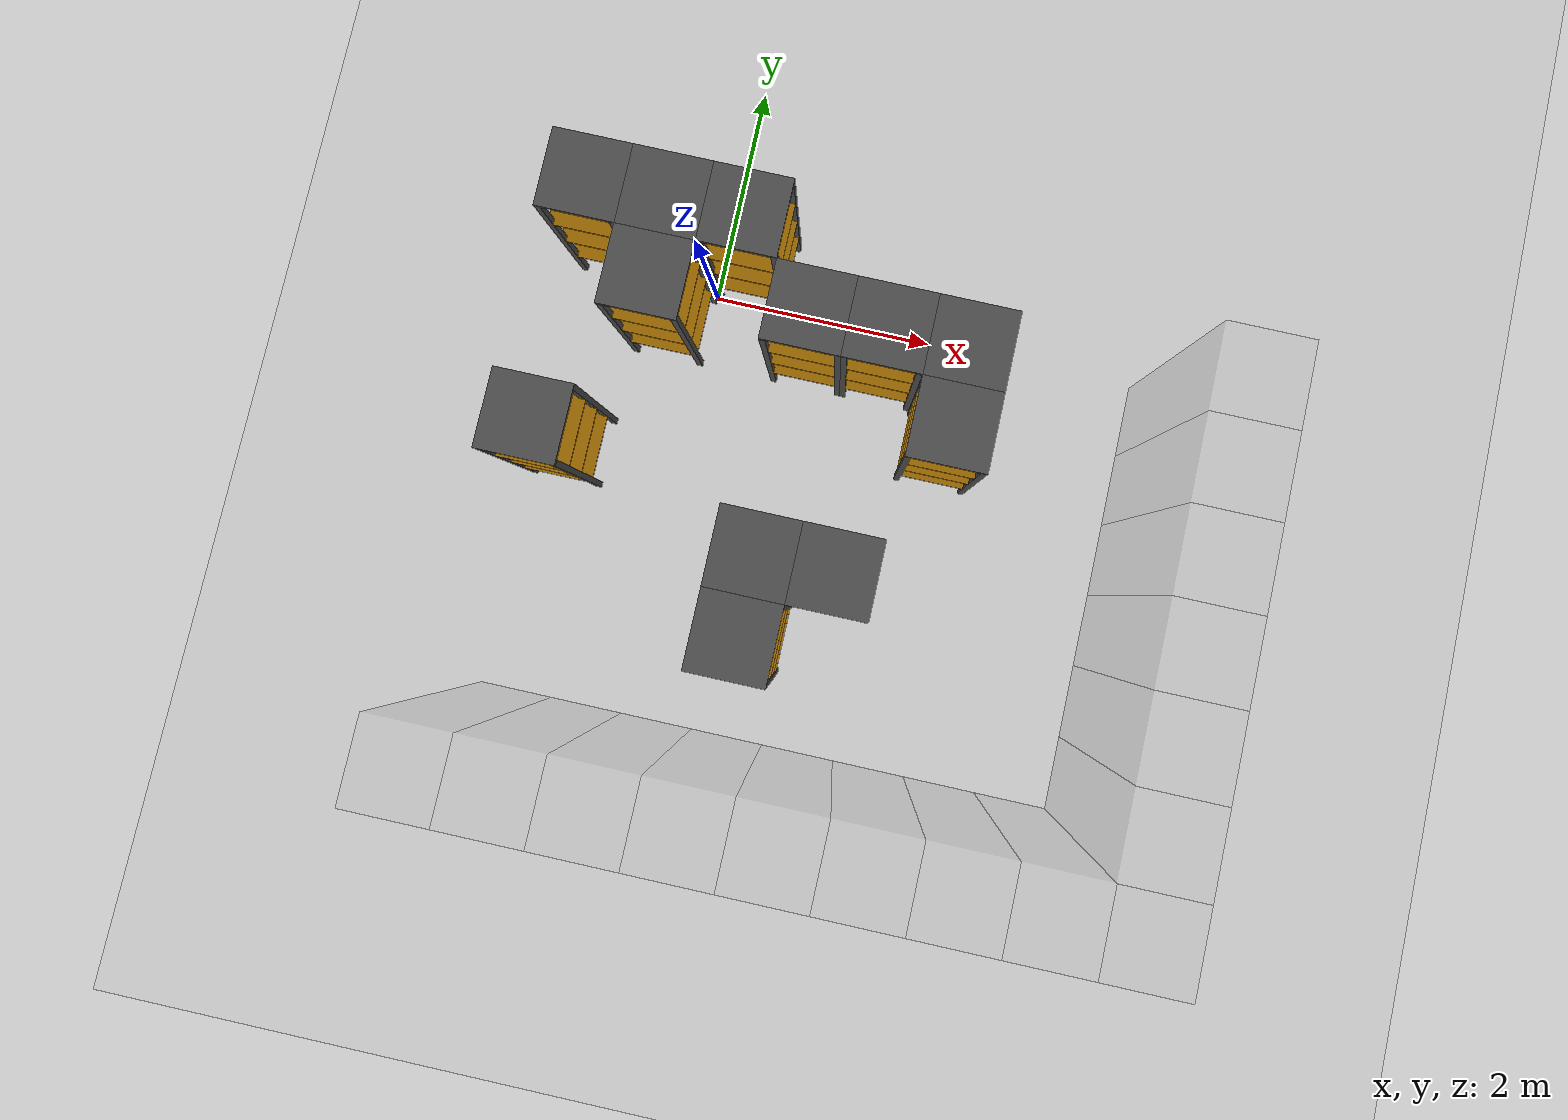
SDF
<sdf version="1.6">
 <world name="default">
  <model name="ground_plane">
   <static>1</static>
   <link name="link">
    <collision name="collision">
     <geometry><plane><normal>0 0 1</normal><size>100 100</size></plane></geometry>
     <surface><friction><ode><mu>100</mu><mu2>50</mu2></ode></friction></surface>
    </collision>
    <visual name="visual">
     <cast_shadows>0</cast_shadows>
     <geometry><plane><normal>0 0 1</normal><size>100 100</size></plane></geometry>
     <material>
      <script><uri>file://media/materials/scripts/gazebo.material</uri><name>Gazebo/Grey</name></script>
     </material>
    </visual>
   </link>
  </model>
  <model name="pole_0_5">
   <static>1</static>
   <link name="main_block">
    <pose>0 0 1.5 0 -0 0</pose>
    <collision name="collision"><geometry><box><size>0.65 0.65 3</size></box></geometry></collision>
    <visual name="visual">
     <geometry><box><size>0.65 0.65 3</size></box></geometry>
     <material><ambient>0.5 0.5 0.5 0.25</ambient><diffuse>0.75 0.75 0.75 0.25</diffuse></material>
    </visual>
   </link>
   <pose>-0.975 -4.225 0 0 -0 0</pose>
  </model>
  <model name="pole_0_6">
   <static>1</static>
   <link name="main_block">
    <pose>0 0 1.5 0 -0 0</pose>
    <collision name="collision"><geometry><box><size>0.65 0.65 3</size></box></geometry></collision>
    <visual name="visual">
     <geometry><box><size>0.65 0.65 3</size></box></geometry>
     <material><ambient>0.5 0.5 0.5 0.25</ambient><diffuse>0.75 0.75 0.75 0.25</diffuse></material>
    </visual>
   </link>
   <pose>-0.325 -4.225 0 0 -0 0</pose>
  </model>
  <model name="pole_0_7">
   <static>1</static>
   <link name="main_block">
    <pose>0 0 1.5 0 -0 0</pose>
    <collision name="collision"><geometry><box><size>0.65 0.65 3</size></box></geometry></collision>
    <visual name="visual">
     <geometry><box><size>0.65 0.65 3</size></box></geometry>
     <material><ambient>0.5 0.5 0.5 0.25</ambient><diffuse>0.75 0.75 0.75 0.25</diffuse></material>
    </visual>
   </link>
   <pose>0.325 -4.225 0 0 -0 0</pose>
  </model>
  <model name="pole_0_8">
   <static>1</static>
   <link name="main_block">
    <pose>0 0 1.5 0 -0 0</pose>
    <collision name="collision"><geometry><box><size>0.65 0.65 3</size></box></geometry></collision>
    <visual name="visual">
     <geometry><box><size>0.65 0.65 3</size></box></geometry>
     <material><ambient>0.5 0.5 0.5 0.25</ambient><diffuse>0.75 0.75 0.75 0.25</diffuse></material>
    </visual>
   </link>
   <pose>0.975 -4.225 0 0 -0 0</pose>
  </model>
  <model name="pole_0_9">
   <static>1</static>
   <link name="main_block">
    <pose>0 0 1.5 0 -0 0</pose>
    <collision name="collision"><geometry><box><size>0.65 0.65 3</size></box></geometry></collision>
    <visual name="visual">
     <geometry><box><size>0.65 0.65 3</size></box></geometry>
     <material><ambient>0.5 0.5 0.5 0.25</ambient><diffuse>0.75 0.75 0.75 0.25</diffuse></material>
    </visual>
   </link>
   <pose>1.625 -4.225 0 0 -0 0</pose>
  </model>
  <model name="pole_0_10">
   <static>1</static>
   <link name="main_block">
    <pose>0 0 1.5 0 -0 0</pose>
    <collision name="collision"><geometry><box><size>0.65 0.65 3</size></box></geometry></collision>
    <visual name="visual">
     <geometry><box><size>0.65 0.65 3</size></box></geometry>
     <material><ambient>0.5 0.5 0.5 0.25</ambient><diffuse>0.75 0.75 0.75 0.25</diffuse></material>
    </visual>
   </link>
   <pose>2.275 -4.225 0 0 -0 0</pose>
  </model>
  <model name="pole_0_11">
   <static>1</static>
   <link name="main_block">
    <pose>0 0 1.5 0 -0 0</pose>
    <collision name="collision"><geometry><box><size>0.65 0.65 3</size></box></geometry></collision>
    <visual name="visual">
     <geometry><box><size>0.65 0.65 3</size></box></geometry>
     <material><ambient>0.5 0.5 0.5 0.25</ambient><diffuse>0.75 0.75 0.75 0.25</diffuse></material>
    </visual>
   </link>
   <pose>2.925 -4.225 0 0 -0 0</pose>
  </model>
  <model name="pole_0_12">
   <static>1</static>
   <link name="main_block">
    <pose>0 0 1.5 0 -0 0</pose>
    <collision name="collision"><geometry><box><size>0.65 0.65 3</size></box></geometry></collision>
    <visual name="visual">
     <geometry><box><size>0.65 0.65 3</size></box></geometry>
     <material><ambient>0.5 0.5 0.5 0.25</ambient><diffuse>0.75 0.75 0.75 0.25</diffuse></material>
    </visual>
   </link>
   <pose>3.575 -4.225 0 0 -0 0</pose>
  </model>
  <model name="pole_0_13">
   <static>1</static>
   <link name="main_block">
    <pose>0 0 1.5 0 -0 0</pose>
    <collision name="collision"><geometry><box><size>0.65 0.65 3</size></box></geometry></collision>
    <visual name="visual">
     <geometry><box><size>0.65 0.65 3</size></box></geometry>
     <material><ambient>0.5 0.5 0.5 0.25</ambient><diffuse>0.75 0.75 0.75 0.25</diffuse></material>
    </visual>
   </link>
   <pose>4.225 -4.225 0 0 -0 0</pose>
  </model>
  <model name="pole_1_13">
   <static>1</static>
   <link name="main_block">
    <pose>0 0 1.5 0 -0 0</pose>
    <collision name="collision"><geometry><box><size>0.65 0.65 3</size></box></geometry></collision>
    <visual name="visual">
     <geometry><box><size>0.65 0.65 3</size></box></geometry>
     <material><ambient>0.5 0.5 0.5 0.25</ambient><diffuse>0.75 0.75 0.75 0.25</diffuse></material>
    </visual>
   </link>
   <pose>4.225 -3.575 0 0 -0 0</pose>
  </model>
  <model name="warehouse_shelf_2_8">
   <static>1</static>
   <link name="main_block">
    <pose>0 0 1.25 0 -0 0</pose>
    <collision name="collision"><geometry><box><size>0.65 0.65 1.5</size></box></geometry></collision>
   </link>
   <link name="leg_1">
    <pose>0.3 0.3 1 0 -0 0</pose>
    <collision name="collision"><geometry><box><size>0.05 0.05 2</size></box></geometry></collision>
    <visual name="visual">
     <geometry><box><size>0.05 0.05 2</size></box></geometry>
     <material><ambient>0.2 0.2 0.2 1</ambient><diffuse>0.3 0.3 0.3 1</diffuse></material>
    </visual>
   </link>
   <link name="leg_2">
    <pose>-0.3 0.3 1 0 -0 0</pose>
    <collision name="collision"><geometry><box><size>0.05 0.05 2</size></box></geometry></collision>
    <visual name="visual">
     <geometry><box><size>0.05 0.05 2</size></box></geometry>
     <material><ambient>0.2 0.2 0.2 1</ambient><diffuse>0.3 0.3 0.3 1</diffuse></material>
    </visual>
   </link>
   <link name="leg_3">
    <pose>-0.3 -0.3 1 0 -0 0</pose>
    <collision name="collision"><geometry><box><size>0.05 0.05 2</size></box></geometry></collision>
    <visual name="visual">
     <geometry><box><size>0.05 0.05 2</size></box></geometry>
     <material><ambient>0.2 0.2 0.2 1</ambient><diffuse>0.3 0.3 0.3 1</diffuse></material>
    </visual>
   </link>
   <link name="leg_4">
    <pose>0.3 -0.3 1 0 -0 0</pose>
    <collision name="collision"><geometry><box><size>0.05 0.05 2</size></box></geometry></collision>
    <visual name="visual">
     <geometry><box><size>0.05 0.05 2</size></box></geometry>
     <material><ambient>0.2 0.2 0.2 1</ambient><diffuse>0.3 0.3 0.3 1</diffuse></material>
    </visual>
   </link>
   <link name="shelf_0">
    <pose>0 0 0.49 0 -0 0</pose>
    <visual name="visual">
     <geometry><box><size>0.649 0.649 0.02</size></box></geometry>
     <material><ambient>0.2 0.05 0 1</ambient><diffuse>0.6 0.4 0 1</diffuse></material>
    </visual>
   </link>
   <link name="shelf_1">
    <pose>0 0 0.99 0 -0 0</pose>
    <visual name="visual">
     <geometry><box><size>0.649 0.649 0.02</size></box></geometry>
     <material><ambient>0.2 0.05 0 1</ambient><diffuse>0.6 0.4 0 1</diffuse></material>
    </visual>
   </link>
   <link name="shelf_2">
    <pose>0 0 1.49 0 -0 0</pose>
    <visual name="visual">
     <geometry><box><size>0.649 0.649 0.02</size></box></geometry>
     <material><ambient>0.2 0.05 0 1</ambient><diffuse>0.6 0.4 0 1</diffuse></material>
    </visual>
   </link>
   <link name="shelf_top">
    <pose>0 0 1.99 0 -0 0</pose>
    <visual name="visual">
     <geometry><box><size>0.65 0.65 0.04</size></box></geometry>
     <material><ambient>0.2 0.2 0.2 1</ambient><diffuse>0.3 0.3 0.3 1</diffuse></material>
    </visual>
   </link>
   <pose>0.975 -2.925 0 0 -0 0</pose>
  </model>
  <model name="pole_2_13">
   <static>1</static>
   <link name="main_block">
    <pose>0 0 1.5 0 -0 0</pose>
    <collision name="collision"><geometry><box><size>0.65 0.65 3</size></box></geometry></collision>
    <visual name="visual">
     <geometry><box><size>0.65 0.65 3</size></box></geometry>
     <material><ambient>0.5 0.5 0.5 0.25</ambient><diffuse>0.75 0.75 0.75 0.25</diffuse></material>
    </visual>
   </link>
   <pose>4.225 -2.925 0 0 -0 0</pose>
  </model>
  <model name="warehouse_shelf_3_8">
   <static>1</static>
   <link name="main_block">
    <pose>0 0 1.25 0 -0 0</pose>
    <collision name="collision"><geometry><box><size>0.65 0.65 1.5</size></box></geometry></collision>
   </link>
   <link name="leg_1">
    <pose>0.3 0.3 1 0 -0 0</pose>
    <collision name="collision"><geometry><box><size>0.05 0.05 2</size></box></geometry></collision>
    <visual name="visual">
     <geometry><box><size>0.05 0.05 2</size></box></geometry>
     <material><ambient>0.2 0.2 0.2 1</ambient><diffuse>0.3 0.3 0.3 1</diffuse></material>
    </visual>
   </link>
   <link name="leg_2">
    <pose>-0.3 0.3 1 0 -0 0</pose>
    <collision name="collision"><geometry><box><size>0.05 0.05 2</size></box></geometry></collision>
    <visual name="visual">
     <geometry><box><size>0.05 0.05 2</size></box></geometry>
     <material><ambient>0.2 0.2 0.2 1</ambient><diffuse>0.3 0.3 0.3 1</diffuse></material>
    </visual>
   </link>
   <link name="leg_3">
    <pose>-0.3 -0.3 1 0 -0 0</pose>
    <collision name="collision"><geometry><box><size>0.05 0.05 2</size></box></geometry></collision>
    <visual name="visual">
     <geometry><box><size>0.05 0.05 2</size></box></geometry>
     <material><ambient>0.2 0.2 0.2 1</ambient><diffuse>0.3 0.3 0.3 1</diffuse></material>
    </visual>
   </link>
   <link name="leg_4">
    <pose>0.3 -0.3 1 0 -0 0</pose>
    <collision name="collision"><geometry><box><size>0.05 0.05 2</size></box></geometry></collision>
    <visual name="visual">
     <geometry><box><size>0.05 0.05 2</size></box></geometry>
     <material><ambient>0.2 0.2 0.2 1</ambient><diffuse>0.3 0.3 0.3 1</diffuse></material>
    </visual>
   </link>
   <link name="shelf_0">
    <pose>0 0 0.49 0 -0 0</pose>
    <visual name="visual">
     <geometry><box><size>0.649 0.649 0.02</size></box></geometry>
     <material><ambient>0.2 0.05 0 1</ambient><diffuse>0.6 0.4 0 1</diffuse></material>
    </visual>
   </link>
   <link name="shelf_1">
    <pose>0 0 0.99 0 -0 0</pose>
    <visual name="visual">
     <geometry><box><size>0.649 0.649 0.02</size></box></geometry>
     <material><ambient>0.2 0.05 0 1</ambient><diffuse>0.6 0.4 0 1</diffuse></material>
    </visual>
   </link>
   <link name="shelf_2">
    <pose>0 0 1.49 0 -0 0</pose>
    <visual name="visual">
     <geometry><box><size>0.649 0.649 0.02</size></box></geometry>
     <material><ambient>0.2 0.05 0 1</ambient><diffuse>0.6 0.4 0 1</diffuse></material>
    </visual>
   </link>
   <link name="shelf_top">
    <pose>0 0 1.99 0 -0 0</pose>
    <visual name="visual">
     <geometry><box><size>0.65 0.65 0.04</size></box></geometry>
     <material><ambient>0.2 0.2 0.2 1</ambient><diffuse>0.3 0.3 0.3 1</diffuse></material>
    </visual>
   </link>
   <pose>0.975 -2.275 0 0 -0 0</pose>
  </model>
  <model name="warehouse_shelf_3_9">
   <static>1</static>
   <link name="main_block">
    <pose>0 0 1.25 0 -0 0</pose>
    <collision name="collision"><geometry><box><size>0.65 0.65 1.5</size></box></geometry></collision>
   </link>
   <link name="leg_1">
    <pose>0.3 0.3 1 0 -0 0</pose>
    <collision name="collision"><geometry><box><size>0.05 0.05 2</size></box></geometry></collision>
    <visual name="visual">
     <geometry><box><size>0.05 0.05 2</size></box></geometry>
     <material><ambient>0.2 0.2 0.2 1</ambient><diffuse>0.3 0.3 0.3 1</diffuse></material>
    </visual>
   </link>
   <link name="leg_2">
    <pose>-0.3 0.3 1 0 -0 0</pose>
    <collision name="collision"><geometry><box><size>0.05 0.05 2</size></box></geometry></collision>
    <visual name="visual">
     <geometry><box><size>0.05 0.05 2</size></box></geometry>
     <material><ambient>0.2 0.2 0.2 1</ambient><diffuse>0.3 0.3 0.3 1</diffuse></material>
    </visual>
   </link>
   <link name="leg_3">
    <pose>-0.3 -0.3 1 0 -0 0</pose>
    <collision name="collision"><geometry><box><size>0.05 0.05 2</size></box></geometry></collision>
    <visual name="visual">
     <geometry><box><size>0.05 0.05 2</size></box></geometry>
     <material><ambient>0.2 0.2 0.2 1</ambient><diffuse>0.3 0.3 0.3 1</diffuse></material>
    </visual>
   </link>
   <link name="leg_4">
    <pose>0.3 -0.3 1 0 -0 0</pose>
    <collision name="collision"><geometry><box><size>0.05 0.05 2</size></box></geometry></collision>
    <visual name="visual">
     <geometry><box><size>0.05 0.05 2</size></box></geometry>
     <material><ambient>0.2 0.2 0.2 1</ambient><diffuse>0.3 0.3 0.3 1</diffuse></material>
    </visual>
   </link>
   <link name="shelf_0">
    <pose>0 0 0.49 0 -0 0</pose>
    <visual name="visual">
     <geometry><box><size>0.649 0.649 0.02</size></box></geometry>
     <material><ambient>0.2 0.05 0 1</ambient><diffuse>0.6 0.4 0 1</diffuse></material>
    </visual>
   </link>
   <link name="shelf_1">
    <pose>0 0 0.99 0 -0 0</pose>
    <visual name="visual">
     <geometry><box><size>0.649 0.649 0.02</size></box></geometry>
     <material><ambient>0.2 0.05 0 1</ambient><diffuse>0.6 0.4 0 1</diffuse></material>
    </visual>
   </link>
   <link name="shelf_2">
    <pose>0 0 1.49 0 -0 0</pose>
    <visual name="visual">
     <geometry><box><size>0.649 0.649 0.02</size></box></geometry>
     <material><ambient>0.2 0.05 0 1</ambient><diffuse>0.6 0.4 0 1</diffuse></material>
    </visual>
   </link>
   <link name="shelf_top">
    <pose>0 0 1.99 0 -0 0</pose>
    <visual name="visual">
     <geometry><box><size>0.65 0.65 0.04</size></box></geometry>
     <material><ambient>0.2 0.2 0.2 1</ambient><diffuse>0.3 0.3 0.3 1</diffuse></material>
    </visual>
   </link>
   <pose>1.625 -2.275 0 0 -0 0</pose>
  </model>
  <model name="pole_3_13">
   <static>1</static>
   <link name="main_block">
    <pose>0 0 1.5 0 -0 0</pose>
    <collision name="collision"><geometry><box><size>0.65 0.65 3</size></box></geometry></collision>
    <visual name="visual">
     <geometry><box><size>0.65 0.65 3</size></box></geometry>
     <material><ambient>0.5 0.5 0.5 0.25</ambient><diffuse>0.75 0.75 0.75 0.25</diffuse></material>
    </visual>
   </link>
   <pose>4.225 -2.275 0 0 -0 0</pose>
  </model>
  <model name="warehouse_shelf_4_5">
   <static>1</static>
   <link name="main_block">
    <pose>0 0 1.25 0 -0 0</pose>
    <collision name="collision"><geometry><box><size>0.65 0.65 1.5</size></box></geometry></collision>
   </link>
   <link name="leg_1">
    <pose>0.3 0.3 1 0 -0 0</pose>
    <collision name="collision"><geometry><box><size>0.05 0.05 2</size></box></geometry></collision>
    <visual name="visual">
     <geometry><box><size>0.05 0.05 2</size></box></geometry>
     <material><ambient>0.2 0.2 0.2 1</ambient><diffuse>0.3 0.3 0.3 1</diffuse></material>
    </visual>
   </link>
   <link name="leg_2">
    <pose>-0.3 0.3 1 0 -0 0</pose>
    <collision name="collision"><geometry><box><size>0.05 0.05 2</size></box></geometry></collision>
    <visual name="visual">
     <geometry><box><size>0.05 0.05 2</size></box></geometry>
     <material><ambient>0.2 0.2 0.2 1</ambient><diffuse>0.3 0.3 0.3 1</diffuse></material>
    </visual>
   </link>
   <link name="leg_3">
    <pose>-0.3 -0.3 1 0 -0 0</pose>
    <collision name="collision"><geometry><box><size>0.05 0.05 2</size></box></geometry></collision>
    <visual name="visual">
     <geometry><box><size>0.05 0.05 2</size></box></geometry>
     <material><ambient>0.2 0.2 0.2 1</ambient><diffuse>0.3 0.3 0.3 1</diffuse></material>
    </visual>
   </link>
   <link name="leg_4">
    <pose>0.3 -0.3 1 0 -0 0</pose>
    <collision name="collision"><geometry><box><size>0.05 0.05 2</size></box></geometry></collision>
    <visual name="visual">
     <geometry><box><size>0.05 0.05 2</size></box></geometry>
     <material><ambient>0.2 0.2 0.2 1</ambient><diffuse>0.3 0.3 0.3 1</diffuse></material>
    </visual>
   </link>
   <link name="shelf_0">
    <pose>0 0 0.49 0 -0 0</pose>
    <visual name="visual">
     <geometry><box><size>0.649 0.649 0.02</size></box></geometry>
     <material><ambient>0.2 0.05 0 1</ambient><diffuse>0.6 0.4 0 1</diffuse></material>
    </visual>
   </link>
   <link name="shelf_1">
    <pose>0 0 0.99 0 -0 0</pose>
    <visual name="visual">
     <geometry><box><size>0.649 0.649 0.02</size></box></geometry>
     <material><ambient>0.2 0.05 0 1</ambient><diffuse>0.6 0.4 0 1</diffuse></material>
    </visual>
   </link>
   <link name="shelf_2">
    <pose>0 0 1.49 0 -0 0</pose>
    <visual name="visual">
     <geometry><box><size>0.649 0.649 0.02</size></box></geometry>
     <material><ambient>0.2 0.05 0 1</ambient><diffuse>0.6 0.4 0 1</diffuse></material>
    </visual>
   </link>
   <link name="shelf_top">
    <pose>0 0 1.99 0 -0 0</pose>
    <visual name="visual">
     <geometry><box><size>0.65 0.65 0.04</size></box></geometry>
     <material><ambient>0.2 0.2 0.2 1</ambient><diffuse>0.3 0.3 0.3 1</diffuse></material>
    </visual>
   </link>
   <pose>-0.975 -1.625 0 0 -0 0</pose>
  </model>
  <model name="pole_4_13">
   <static>1</static>
   <link name="main_block">
    <pose>0 0 1.5 0 -0 0</pose>
    <collision name="collision"><geometry><box><size>0.65 0.65 3</size></box></geometry></collision>
    <visual name="visual">
     <geometry><box><size>0.65 0.65 3</size></box></geometry>
     <material><ambient>0.5 0.5 0.5 0.25</ambient><diffuse>0.75 0.75 0.75 0.25</diffuse></material>
    </visual>
   </link>
   <pose>4.225 -1.625 0 0 -0 0</pose>
  </model>
  <model name="warehouse_shelf_5_10">
   <static>1</static>
   <link name="main_block">
    <pose>0 0 1.25 0 -0 0</pose>
    <collision name="collision"><geometry><box><size>0.65 0.65 1.5</size></box></geometry></collision>
   </link>
   <link name="leg_1">
    <pose>0.3 0.3 1 0 -0 0</pose>
    <collision name="collision"><geometry><box><size>0.05 0.05 2</size></box></geometry></collision>
    <visual name="visual">
     <geometry><box><size>0.05 0.05 2</size></box></geometry>
     <material><ambient>0.2 0.2 0.2 1</ambient><diffuse>0.3 0.3 0.3 1</diffuse></material>
    </visual>
   </link>
   <link name="leg_2">
    <pose>-0.3 0.3 1 0 -0 0</pose>
    <collision name="collision"><geometry><box><size>0.05 0.05 2</size></box></geometry></collision>
    <visual name="visual">
     <geometry><box><size>0.05 0.05 2</size></box></geometry>
     <material><ambient>0.2 0.2 0.2 1</ambient><diffuse>0.3 0.3 0.3 1</diffuse></material>
    </visual>
   </link>
   <link name="leg_3">
    <pose>-0.3 -0.3 1 0 -0 0</pose>
    <collision name="collision"><geometry><box><size>0.05 0.05 2</size></box></geometry></collision>
    <visual name="visual">
     <geometry><box><size>0.05 0.05 2</size></box></geometry>
     <material><ambient>0.2 0.2 0.2 1</ambient><diffuse>0.3 0.3 0.3 1</diffuse></material>
    </visual>
   </link>
   <link name="leg_4">
    <pose>0.3 -0.3 1 0 -0 0</pose>
    <collision name="collision"><geometry><box><size>0.05 0.05 2</size></box></geometry></collision>
    <visual name="visual">
     <geometry><box><size>0.05 0.05 2</size></box></geometry>
     <material><ambient>0.2 0.2 0.2 1</ambient><diffuse>0.3 0.3 0.3 1</diffuse></material>
    </visual>
   </link>
   <link name="shelf_0">
    <pose>0 0 0.49 0 -0 0</pose>
    <visual name="visual">
     <geometry><box><size>0.649 0.649 0.02</size></box></geometry>
     <material><ambient>0.2 0.05 0 1</ambient><diffuse>0.6 0.4 0 1</diffuse></material>
    </visual>
   </link>
   <link name="shelf_1">
    <pose>0 0 0.99 0 -0 0</pose>
    <visual name="visual">
     <geometry><box><size>0.649 0.649 0.02</size></box></geometry>
     <material><ambient>0.2 0.05 0 1</ambient><diffuse>0.6 0.4 0 1</diffuse></material>
    </visual>
   </link>
   <link name="shelf_2">
    <pose>0 0 1.49 0 -0 0</pose>
    <visual name="visual">
     <geometry><box><size>0.649 0.649 0.02</size></box></geometry>
     <material><ambient>0.2 0.05 0 1</ambient><diffuse>0.6 0.4 0 1</diffuse></material>
    </visual>
   </link>
   <link name="shelf_top">
    <pose>0 0 1.99 0 -0 0</pose>
    <visual name="visual">
     <geometry><box><size>0.65 0.65 0.04</size></box></geometry>
     <material><ambient>0.2 0.2 0.2 1</ambient><diffuse>0.3 0.3 0.3 1</diffuse></material>
    </visual>
   </link>
   <pose>2.275 -0.975 0 0 -0 0</pose>
  </model>
  <model name="pole_5_13">
   <static>1</static>
   <link name="main_block">
    <pose>0 0 1.5 0 -0 0</pose>
    <collision name="collision"><geometry><box><size>0.65 0.65 3</size></box></geometry></collision>
    <visual name="visual">
     <geometry><box><size>0.65 0.65 3</size></box></geometry>
     <material><ambient>0.5 0.5 0.5 0.25</ambient><diffuse>0.75 0.75 0.75 0.25</diffuse></material>
    </visual>
   </link>
   <pose>4.225 -0.975 0 0 -0 0</pose>
  </model>
  <model name="warehouse_shelf_6_6">
   <static>1</static>
   <link name="main_block">
    <pose>0 0 1.25 0 -0 0</pose>
    <collision name="collision"><geometry><box><size>0.65 0.65 1.5</size></box></geometry></collision>
   </link>
   <link name="leg_1">
    <pose>0.3 0.3 1 0 -0 0</pose>
    <collision name="collision"><geometry><box><size>0.05 0.05 2</size></box></geometry></collision>
    <visual name="visual">
     <geometry><box><size>0.05 0.05 2</size></box></geometry>
     <material><ambient>0.2 0.2 0.2 1</ambient><diffuse>0.3 0.3 0.3 1</diffuse></material>
    </visual>
   </link>
   <link name="leg_2">
    <pose>-0.3 0.3 1 0 -0 0</pose>
    <collision name="collision"><geometry><box><size>0.05 0.05 2</size></box></geometry></collision>
    <visual name="visual">
     <geometry><box><size>0.05 0.05 2</size></box></geometry>
     <material><ambient>0.2 0.2 0.2 1</ambient><diffuse>0.3 0.3 0.3 1</diffuse></material>
    </visual>
   </link>
   <link name="leg_3">
    <pose>-0.3 -0.3 1 0 -0 0</pose>
    <collision name="collision"><geometry><box><size>0.05 0.05 2</size></box></geometry></collision>
    <visual name="visual">
     <geometry><box><size>0.05 0.05 2</size></box></geometry>
     <material><ambient>0.2 0.2 0.2 1</ambient><diffuse>0.3 0.3 0.3 1</diffuse></material>
    </visual>
   </link>
   <link name="leg_4">
    <pose>0.3 -0.3 1 0 -0 0</pose>
    <collision name="collision"><geometry><box><size>0.05 0.05 2</size></box></geometry></collision>
    <visual name="visual">
     <geometry><box><size>0.05 0.05 2</size></box></geometry>
     <material><ambient>0.2 0.2 0.2 1</ambient><diffuse>0.3 0.3 0.3 1</diffuse></material>
    </visual>
   </link>
   <link name="shelf_0">
    <pose>0 0 0.49 0 -0 0</pose>
    <visual name="visual">
     <geometry><box><size>0.649 0.649 0.02</size></box></geometry>
     <material><ambient>0.2 0.05 0 1</ambient><diffuse>0.6 0.4 0 1</diffuse></material>
    </visual>
   </link>
   <link name="shelf_1">
    <pose>0 0 0.99 0 -0 0</pose>
    <visual name="visual">
     <geometry><box><size>0.649 0.649 0.02</size></box></geometry>
     <material><ambient>0.2 0.05 0 1</ambient><diffuse>0.6 0.4 0 1</diffuse></material>
    </visual>
   </link>
   <link name="shelf_2">
    <pose>0 0 1.49 0 -0 0</pose>
    <visual name="visual">
     <geometry><box><size>0.649 0.649 0.02</size></box></geometry>
     <material><ambient>0.2 0.05 0 1</ambient><diffuse>0.6 0.4 0 1</diffuse></material>
    </visual>
   </link>
   <link name="shelf_top">
    <pose>0 0 1.99 0 -0 0</pose>
    <visual name="visual">
     <geometry><box><size>0.65 0.65 0.04</size></box></geometry>
     <material><ambient>0.2 0.2 0.2 1</ambient><diffuse>0.3 0.3 0.3 1</diffuse></material>
    </visual>
   </link>
   <pose>-0.325 -0.325 0 0 -0 0</pose>
  </model>
  <model name="warehouse_shelf_6_8">
   <static>1</static>
   <link name="main_block">
    <pose>0 0 1.25 0 -0 0</pose>
    <collision name="collision"><geometry><box><size>0.65 0.65 1.5</size></box></geometry></collision>
   </link>
   <link name="leg_1">
    <pose>0.3 0.3 1 0 -0 0</pose>
    <collision name="collision"><geometry><box><size>0.05 0.05 2</size></box></geometry></collision>
    <visual name="visual">
     <geometry><box><size>0.05 0.05 2</size></box></geometry>
     <material><ambient>0.2 0.2 0.2 1</ambient><diffuse>0.3 0.3 0.3 1</diffuse></material>
    </visual>
   </link>
   <link name="leg_2">
    <pose>-0.3 0.3 1 0 -0 0</pose>
    <collision name="collision"><geometry><box><size>0.05 0.05 2</size></box></geometry></collision>
    <visual name="visual">
     <geometry><box><size>0.05 0.05 2</size></box></geometry>
     <material><ambient>0.2 0.2 0.2 1</ambient><diffuse>0.3 0.3 0.3 1</diffuse></material>
    </visual>
   </link>
   <link name="leg_3">
    <pose>-0.3 -0.3 1 0 -0 0</pose>
    <collision name="collision"><geometry><box><size>0.05 0.05 2</size></box></geometry></collision>
    <visual name="visual">
     <geometry><box><size>0.05 0.05 2</size></box></geometry>
     <material><ambient>0.2 0.2 0.2 1</ambient><diffuse>0.3 0.3 0.3 1</diffuse></material>
    </visual>
   </link>
   <link name="leg_4">
    <pose>0.3 -0.3 1 0 -0 0</pose>
    <collision name="collision"><geometry><box><size>0.05 0.05 2</size></box></geometry></collision>
    <visual name="visual">
     <geometry><box><size>0.05 0.05 2</size></box></geometry>
     <material><ambient>0.2 0.2 0.2 1</ambient><diffuse>0.3 0.3 0.3 1</diffuse></material>
    </visual>
   </link>
   <link name="shelf_0">
    <pose>0 0 0.49 0 -0 0</pose>
    <visual name="visual">
     <geometry><box><size>0.649 0.649 0.02</size></box></geometry>
     <material><ambient>0.2 0.05 0 1</ambient><diffuse>0.6 0.4 0 1</diffuse></material>
    </visual>
   </link>
   <link name="shelf_1">
    <pose>0 0 0.99 0 -0 0</pose>
    <visual name="visual">
     <geometry><box><size>0.649 0.649 0.02</size></box></geometry>
     <material><ambient>0.2 0.05 0 1</ambient><diffuse>0.6 0.4 0 1</diffuse></material>
    </visual>
   </link>
   <link name="shelf_2">
    <pose>0 0 1.49 0 -0 0</pose>
    <visual name="visual">
     <geometry><box><size>0.649 0.649 0.02</size></box></geometry>
     <material><ambient>0.2 0.05 0 1</ambient><diffuse>0.6 0.4 0 1</diffuse></material>
    </visual>
   </link>
   <link name="shelf_top">
    <pose>0 0 1.99 0 -0 0</pose>
    <visual name="visual">
     <geometry><box><size>0.65 0.65 0.04</size></box></geometry>
     <material><ambient>0.2 0.2 0.2 1</ambient><diffuse>0.3 0.3 0.3 1</diffuse></material>
    </visual>
   </link>
   <pose>0.975 -0.325 0 0 -0 0</pose>
  </model>
  <model name="warehouse_shelf_6_9">
   <static>1</static>
   <link name="main_block">
    <pose>0 0 1.25 0 -0 0</pose>
    <collision name="collision"><geometry><box><size>0.65 0.65 1.5</size></box></geometry></collision>
   </link>
   <link name="leg_1">
    <pose>0.3 0.3 1 0 -0 0</pose>
    <collision name="collision"><geometry><box><size>0.05 0.05 2</size></box></geometry></collision>
    <visual name="visual">
     <geometry><box><size>0.05 0.05 2</size></box></geometry>
     <material><ambient>0.2 0.2 0.2 1</ambient><diffuse>0.3 0.3 0.3 1</diffuse></material>
    </visual>
   </link>
   <link name="leg_2">
    <pose>-0.3 0.3 1 0 -0 0</pose>
    <collision name="collision"><geometry><box><size>0.05 0.05 2</size></box></geometry></collision>
    <visual name="visual">
     <geometry><box><size>0.05 0.05 2</size></box></geometry>
     <material><ambient>0.2 0.2 0.2 1</ambient><diffuse>0.3 0.3 0.3 1</diffuse></material>
    </visual>
   </link>
   <link name="leg_3">
    <pose>-0.3 -0.3 1 0 -0 0</pose>
    <collision name="collision"><geometry><box><size>0.05 0.05 2</size></box></geometry></collision>
    <visual name="visual">
     <geometry><box><size>0.05 0.05 2</size></box></geometry>
     <material><ambient>0.2 0.2 0.2 1</ambient><diffuse>0.3 0.3 0.3 1</diffuse></material>
    </visual>
   </link>
   <link name="leg_4">
    <pose>0.3 -0.3 1 0 -0 0</pose>
    <collision name="collision"><geometry><box><size>0.05 0.05 2</size></box></geometry></collision>
    <visual name="visual">
     <geometry><box><size>0.05 0.05 2</size></box></geometry>
     <material><ambient>0.2 0.2 0.2 1</ambient><diffuse>0.3 0.3 0.3 1</diffuse></material>
    </visual>
   </link>
   <link name="shelf_0">
    <pose>0 0 0.49 0 -0 0</pose>
    <visual name="visual">
     <geometry><box><size>0.649 0.649 0.02</size></box></geometry>
     <material><ambient>0.2 0.05 0 1</ambient><diffuse>0.6 0.4 0 1</diffuse></material>
    </visual>
   </link>
   <link name="shelf_1">
    <pose>0 0 0.99 0 -0 0</pose>
    <visual name="visual">
     <geometry><box><size>0.649 0.649 0.02</size></box></geometry>
     <material><ambient>0.2 0.05 0 1</ambient><diffuse>0.6 0.4 0 1</diffuse></material>
    </visual>
   </link>
   <link name="shelf_2">
    <pose>0 0 1.49 0 -0 0</pose>
    <visual name="visual">
     <geometry><box><size>0.649 0.649 0.02</size></box></geometry>
     <material><ambient>0.2 0.05 0 1</ambient><diffuse>0.6 0.4 0 1</diffuse></material>
    </visual>
   </link>
   <link name="shelf_top">
    <pose>0 0 1.99 0 -0 0</pose>
    <visual name="visual">
     <geometry><box><size>0.65 0.65 0.04</size></box></geometry>
     <material><ambient>0.2 0.2 0.2 1</ambient><diffuse>0.3 0.3 0.3 1</diffuse></material>
    </visual>
   </link>
   <pose>1.625 -0.325 0 0 -0 0</pose>
  </model>
  <model name="warehouse_shelf_6_10">
   <static>1</static>
   <link name="main_block">
    <pose>0 0 1.25 0 -0 0</pose>
    <collision name="collision"><geometry><box><size>0.65 0.65 1.5</size></box></geometry></collision>
   </link>
   <link name="leg_1">
    <pose>0.3 0.3 1 0 -0 0</pose>
    <collision name="collision"><geometry><box><size>0.05 0.05 2</size></box></geometry></collision>
    <visual name="visual">
     <geometry><box><size>0.05 0.05 2</size></box></geometry>
     <material><ambient>0.2 0.2 0.2 1</ambient><diffuse>0.3 0.3 0.3 1</diffuse></material>
    </visual>
   </link>
   <link name="leg_2">
    <pose>-0.3 0.3 1 0 -0 0</pose>
    <collision name="collision"><geometry><box><size>0.05 0.05 2</size></box></geometry></collision>
    <visual name="visual">
     <geometry><box><size>0.05 0.05 2</size></box></geometry>
     <material><ambient>0.2 0.2 0.2 1</ambient><diffuse>0.3 0.3 0.3 1</diffuse></material>
    </visual>
   </link>
   <link name="leg_3">
    <pose>-0.3 -0.3 1 0 -0 0</pose>
    <collision name="collision"><geometry><box><size>0.05 0.05 2</size></box></geometry></collision>
    <visual name="visual">
     <geometry><box><size>0.05 0.05 2</size></box></geometry>
     <material><ambient>0.2 0.2 0.2 1</ambient><diffuse>0.3 0.3 0.3 1</diffuse></material>
    </visual>
   </link>
   <link name="leg_4">
    <pose>0.3 -0.3 1 0 -0 0</pose>
    <collision name="collision"><geometry><box><size>0.05 0.05 2</size></box></geometry></collision>
    <visual name="visual">
     <geometry><box><size>0.05 0.05 2</size></box></geometry>
     <material><ambient>0.2 0.2 0.2 1</ambient><diffuse>0.3 0.3 0.3 1</diffuse></material>
    </visual>
   </link>
   <link name="shelf_0">
    <pose>0 0 0.49 0 -0 0</pose>
    <visual name="visual">
     <geometry><box><size>0.649 0.649 0.02</size></box></geometry>
     <material><ambient>0.2 0.05 0 1</ambient><diffuse>0.6 0.4 0 1</diffuse></material>
    </visual>
   </link>
   <link name="shelf_1">
    <pose>0 0 0.99 0 -0 0</pose>
    <visual name="visual">
     <geometry><box><size>0.649 0.649 0.02</size></box></geometry>
     <material><ambient>0.2 0.05 0 1</ambient><diffuse>0.6 0.4 0 1</diffuse></material>
    </visual>
   </link>
   <link name="shelf_2">
    <pose>0 0 1.49 0 -0 0</pose>
    <visual name="visual">
     <geometry><box><size>0.649 0.649 0.02</size></box></geometry>
     <material><ambient>0.2 0.05 0 1</ambient><diffuse>0.6 0.4 0 1</diffuse></material>
    </visual>
   </link>
   <link name="shelf_top">
    <pose>0 0 1.99 0 -0 0</pose>
    <visual name="visual">
     <geometry><box><size>0.65 0.65 0.04</size></box></geometry>
     <material><ambient>0.2 0.2 0.2 1</ambient><diffuse>0.3 0.3 0.3 1</diffuse></material>
    </visual>
   </link>
   <pose>2.275 -0.325 0 0 -0 0</pose>
  </model>
  <model name="pole_6_13">
   <static>1</static>
   <link name="main_block">
    <pose>0 0 1.5 0 -0 0</pose>
    <collision name="collision"><geometry><box><size>0.65 0.65 3</size></box></geometry></collision>
    <visual name="visual">
     <geometry><box><size>0.65 0.65 3</size></box></geometry>
     <material><ambient>0.5 0.5 0.5 0.25</ambient><diffuse>0.75 0.75 0.75 0.25</diffuse></material>
    </visual>
   </link>
   <pose>4.225 -0.325 0 0 -0 0</pose>
  </model>
  <model name="warehouse_shelf_7_5">
   <static>1</static>
   <link name="main_block">
    <pose>0 0 1.25 0 -0 0</pose>
    <collision name="collision"><geometry><box><size>0.65 0.65 1.5</size></box></geometry></collision>
   </link>
   <link name="leg_1">
    <pose>0.3 0.3 1 0 -0 0</pose>
    <collision name="collision"><geometry><box><size>0.05 0.05 2</size></box></geometry></collision>
    <visual name="visual">
     <geometry><box><size>0.05 0.05 2</size></box></geometry>
     <material><ambient>0.2 0.2 0.2 1</ambient><diffuse>0.3 0.3 0.3 1</diffuse></material>
    </visual>
   </link>
   <link name="leg_2">
    <pose>-0.3 0.3 1 0 -0 0</pose>
    <collision name="collision"><geometry><box><size>0.05 0.05 2</size></box></geometry></collision>
    <visual name="visual">
     <geometry><box><size>0.05 0.05 2</size></box></geometry>
     <material><ambient>0.2 0.2 0.2 1</ambient><diffuse>0.3 0.3 0.3 1</diffuse></material>
    </visual>
   </link>
   <link name="leg_3">
    <pose>-0.3 -0.3 1 0 -0 0</pose>
    <collision name="collision"><geometry><box><size>0.05 0.05 2</size></box></geometry></collision>
    <visual name="visual">
     <geometry><box><size>0.05 0.05 2</size></box></geometry>
     <material><ambient>0.2 0.2 0.2 1</ambient><diffuse>0.3 0.3 0.3 1</diffuse></material>
    </visual>
   </link>
   <link name="leg_4">
    <pose>0.3 -0.3 1 0 -0 0</pose>
    <collision name="collision"><geometry><box><size>0.05 0.05 2</size></box></geometry></collision>
    <visual name="visual">
     <geometry><box><size>0.05 0.05 2</size></box></geometry>
     <material><ambient>0.2 0.2 0.2 1</ambient><diffuse>0.3 0.3 0.3 1</diffuse></material>
    </visual>
   </link>
   <link name="shelf_0">
    <pose>0 0 0.49 0 -0 0</pose>
    <visual name="visual">
     <geometry><box><size>0.649 0.649 0.02</size></box></geometry>
     <material><ambient>0.2 0.05 0 1</ambient><diffuse>0.6 0.4 0 1</diffuse></material>
    </visual>
   </link>
   <link name="shelf_1">
    <pose>0 0 0.99 0 -0 0</pose>
    <visual name="visual">
     <geometry><box><size>0.649 0.649 0.02</size></box></geometry>
     <material><ambient>0.2 0.05 0 1</ambient><diffuse>0.6 0.4 0 1</diffuse></material>
    </visual>
   </link>
   <link name="shelf_2">
    <pose>0 0 1.49 0 -0 0</pose>
    <visual name="visual">
     <geometry><box><size>0.649 0.649 0.02</size></box></geometry>
     <material><ambient>0.2 0.05 0 1</ambient><diffuse>0.6 0.4 0 1</diffuse></material>
    </visual>
   </link>
   <link name="shelf_top">
    <pose>0 0 1.99 0 -0 0</pose>
    <visual name="visual">
     <geometry><box><size>0.65 0.65 0.04</size></box></geometry>
     <material><ambient>0.2 0.2 0.2 1</ambient><diffuse>0.3 0.3 0.3 1</diffuse></material>
    </visual>
   </link>
   <pose>-0.975 0.325 0 0 -0 0</pose>
  </model>
  <model name="warehouse_shelf_7_6">
   <static>1</static>
   <link name="main_block">
    <pose>0 0 1.25 0 -0 0</pose>
    <collision name="collision"><geometry><box><size>0.65 0.65 1.5</size></box></geometry></collision>
   </link>
   <link name="leg_1">
    <pose>0.3 0.3 1 0 -0 0</pose>
    <collision name="collision"><geometry><box><size>0.05 0.05 2</size></box></geometry></collision>
    <visual name="visual">
     <geometry><box><size>0.05 0.05 2</size></box></geometry>
     <material><ambient>0.2 0.2 0.2 1</ambient><diffuse>0.3 0.3 0.3 1</diffuse></material>
    </visual>
   </link>
   <link name="leg_2">
    <pose>-0.3 0.3 1 0 -0 0</pose>
    <collision name="collision"><geometry><box><size>0.05 0.05 2</size></box></geometry></collision>
    <visual name="visual">
     <geometry><box><size>0.05 0.05 2</size></box></geometry>
     <material><ambient>0.2 0.2 0.2 1</ambient><diffuse>0.3 0.3 0.3 1</diffuse></material>
    </visual>
   </link>
   <link name="leg_3">
    <pose>-0.3 -0.3 1 0 -0 0</pose>
    <collision name="collision"><geometry><box><size>0.05 0.05 2</size></box></geometry></collision>
    <visual name="visual">
     <geometry><box><size>0.05 0.05 2</size></box></geometry>
     <material><ambient>0.2 0.2 0.2 1</ambient><diffuse>0.3 0.3 0.3 1</diffuse></material>
    </visual>
   </link>
   <link name="leg_4">
    <pose>0.3 -0.3 1 0 -0 0</pose>
    <collision name="collision"><geometry><box><size>0.05 0.05 2</size></box></geometry></collision>
    <visual name="visual">
     <geometry><box><size>0.05 0.05 2</size></box></geometry>
     <material><ambient>0.2 0.2 0.2 1</ambient><diffuse>0.3 0.3 0.3 1</diffuse></material>
    </visual>
   </link>
   <link name="shelf_0">
    <pose>0 0 0.49 0 -0 0</pose>
    <visual name="visual">
     <geometry><box><size>0.649 0.649 0.02</size></box></geometry>
     <material><ambient>0.2 0.05 0 1</ambient><diffuse>0.6 0.4 0 1</diffuse></material>
    </visual>
   </link>
   <link name="shelf_1">
    <pose>0 0 0.99 0 -0 0</pose>
    <visual name="visual">
     <geometry><box><size>0.649 0.649 0.02</size></box></geometry>
     <material><ambient>0.2 0.05 0 1</ambient><diffuse>0.6 0.4 0 1</diffuse></material>
    </visual>
   </link>
   <link name="shelf_2">
    <pose>0 0 1.49 0 -0 0</pose>
    <visual name="visual">
     <geometry><box><size>0.649 0.649 0.02</size></box></geometry>
     <material><ambient>0.2 0.05 0 1</ambient><diffuse>0.6 0.4 0 1</diffuse></material>
    </visual>
   </link>
   <link name="shelf_top">
    <pose>0 0 1.99 0 -0 0</pose>
    <visual name="visual">
     <geometry><box><size>0.65 0.65 0.04</size></box></geometry>
     <material><ambient>0.2 0.2 0.2 1</ambient><diffuse>0.3 0.3 0.3 1</diffuse></material>
    </visual>
   </link>
   <pose>-0.325 0.325 0 0 -0 0</pose>
  </model>
  <model name="warehouse_shelf_7_7">
   <static>1</static>
   <link name="main_block">
    <pose>0 0 1.25 0 -0 0</pose>
    <collision name="collision"><geometry><box><size>0.65 0.65 1.5</size></box></geometry></collision>
   </link>
   <link name="leg_1">
    <pose>0.3 0.3 1 0 -0 0</pose>
    <collision name="collision"><geometry><box><size>0.05 0.05 2</size></box></geometry></collision>
    <visual name="visual">
     <geometry><box><size>0.05 0.05 2</size></box></geometry>
     <material><ambient>0.2 0.2 0.2 1</ambient><diffuse>0.3 0.3 0.3 1</diffuse></material>
    </visual>
   </link>
   <link name="leg_2">
    <pose>-0.3 0.3 1 0 -0 0</pose>
    <collision name="collision"><geometry><box><size>0.05 0.05 2</size></box></geometry></collision>
    <visual name="visual">
     <geometry><box><size>0.05 0.05 2</size></box></geometry>
     <material><ambient>0.2 0.2 0.2 1</ambient><diffuse>0.3 0.3 0.3 1</diffuse></material>
    </visual>
   </link>
   <link name="leg_3">
    <pose>-0.3 -0.3 1 0 -0 0</pose>
    <collision name="collision"><geometry><box><size>0.05 0.05 2</size></box></geometry></collision>
    <visual name="visual">
     <geometry><box><size>0.05 0.05 2</size></box></geometry>
     <material><ambient>0.2 0.2 0.2 1</ambient><diffuse>0.3 0.3 0.3 1</diffuse></material>
    </visual>
   </link>
   <link name="leg_4">
    <pose>0.3 -0.3 1 0 -0 0</pose>
    <collision name="collision"><geometry><box><size>0.05 0.05 2</size></box></geometry></collision>
    <visual name="visual">
     <geometry><box><size>0.05 0.05 2</size></box></geometry>
     <material><ambient>0.2 0.2 0.2 1</ambient><diffuse>0.3 0.3 0.3 1</diffuse></material>
    </visual>
   </link>
   <link name="shelf_0">
    <pose>0 0 0.49 0 -0 0</pose>
    <visual name="visual">
     <geometry><box><size>0.649 0.649 0.02</size></box></geometry>
     <material><ambient>0.2 0.05 0 1</ambient><diffuse>0.6 0.4 0 1</diffuse></material>
    </visual>
   </link>
   <link name="shelf_1">
    <pose>0 0 0.99 0 -0 0</pose>
    <visual name="visual">
     <geometry><box><size>0.649 0.649 0.02</size></box></geometry>
     <material><ambient>0.2 0.05 0 1</ambient><diffuse>0.6 0.4 0 1</diffuse></material>
    </visual>
   </link>
   <link name="shelf_2">
    <pose>0 0 1.49 0 -0 0</pose>
    <visual name="visual">
     <geometry><box><size>0.649 0.649 0.02</size></box></geometry>
     <material><ambient>0.2 0.05 0 1</ambient><diffuse>0.6 0.4 0 1</diffuse></material>
    </visual>
   </link>
   <link name="shelf_top">
    <pose>0 0 1.99 0 -0 0</pose>
    <visual name="visual">
     <geometry><box><size>0.65 0.65 0.04</size></box></geometry>
     <material><ambient>0.2 0.2 0.2 1</ambient><diffuse>0.3 0.3 0.3 1</diffuse></material>
    </visual>
   </link>
   <pose>0.325 0.325 0 0 -0 0</pose>
  </model>
 </world>
</sdf>
